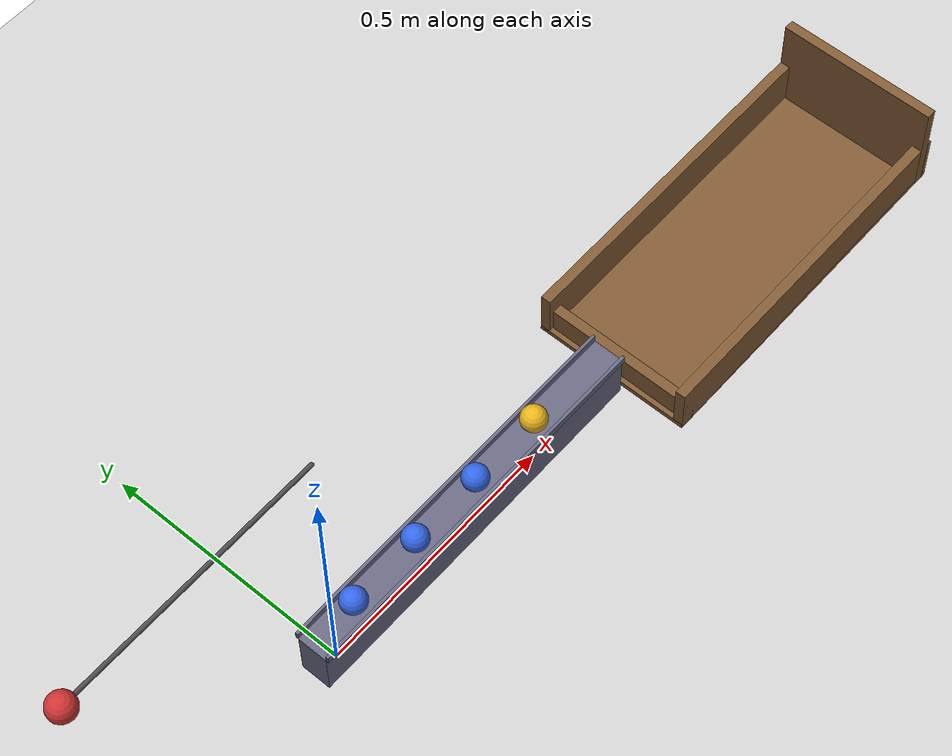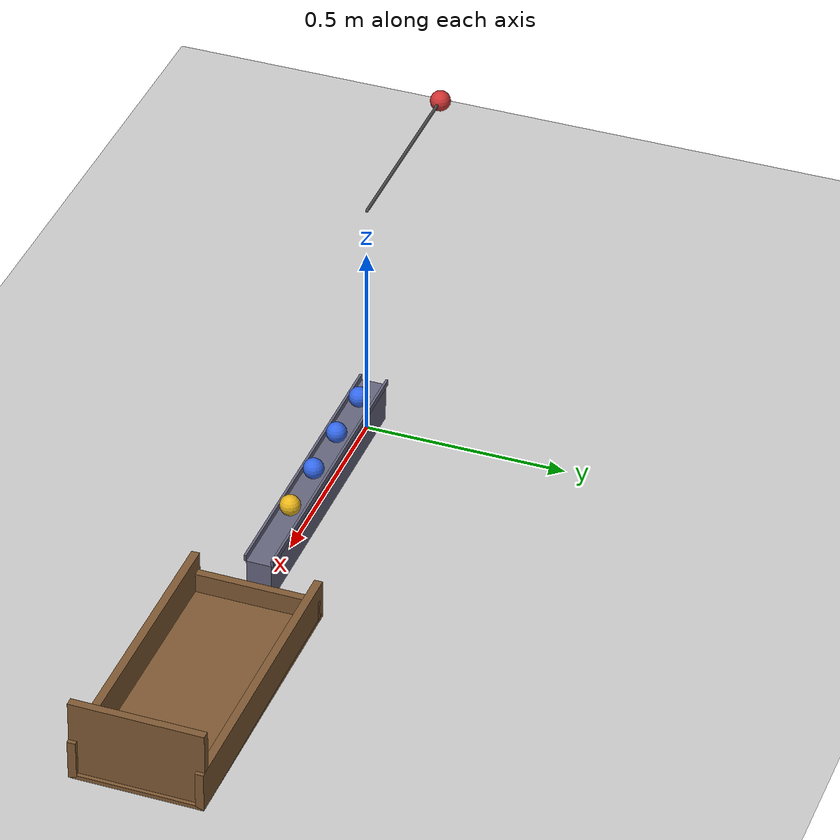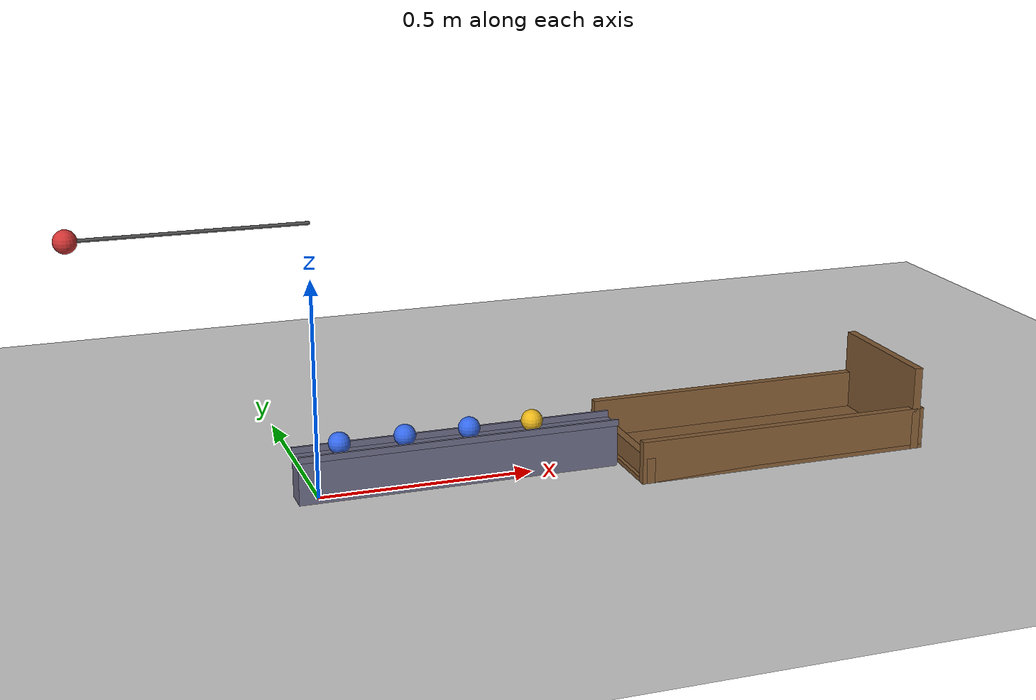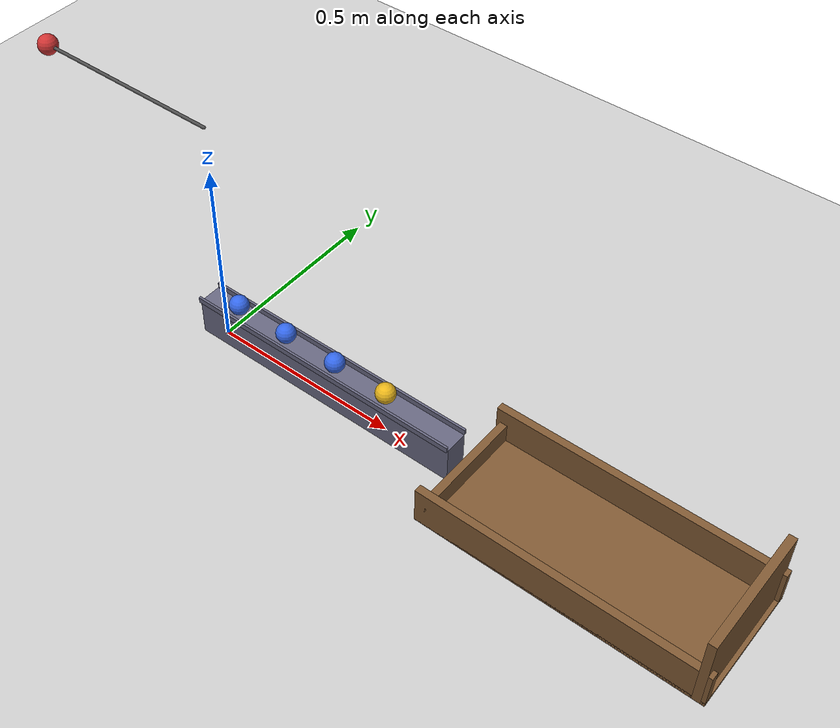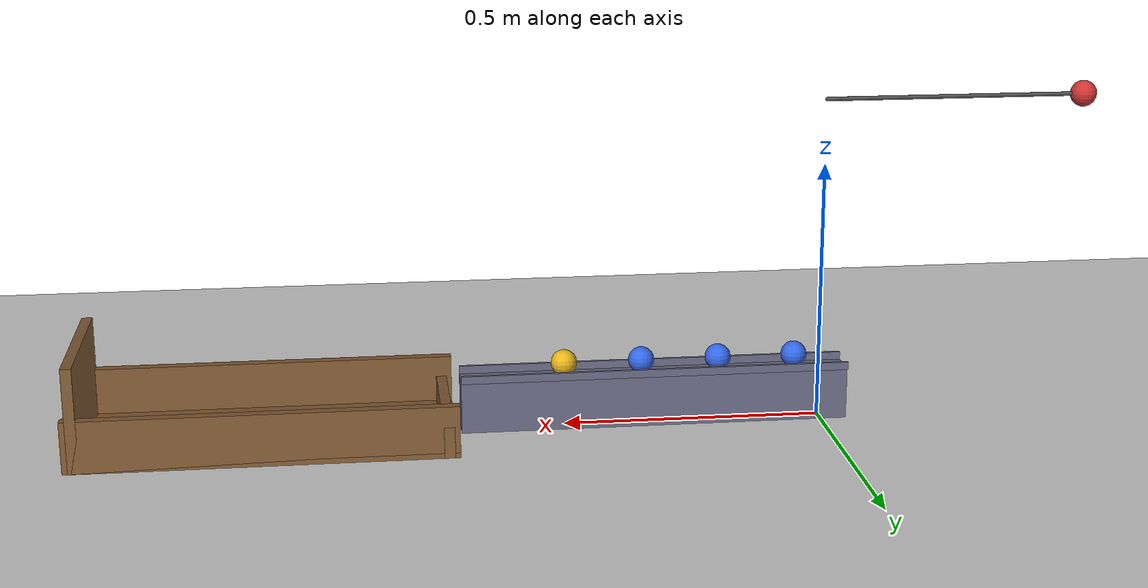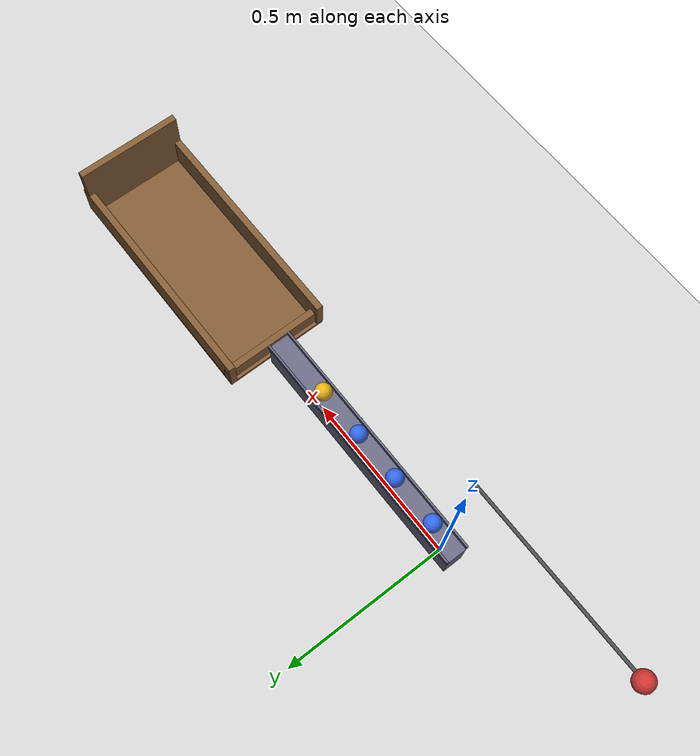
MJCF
<mujoco model="pendulum_ball_chain">
  <option timestep="0.002"/>
  <worldbody>
    <light name="main_light" pos="0.5 -1 2" dir="0 0.5 -1"/>
    <geom name="floor" type="plane" size="3 3 0.1" rgba="0.8 0.8 0.8 1"/>

    <body name="pendulum" pos="0 0 0.625">
      <joint name="pendulum_hinge" type="hinge" axis="0 1 0"/>
      <geom name="pendulum_rod" type="capsule" fromto="0 0 0 -0.5 0 0" size="0.004" mass="0.001" contype="0" conaffinity="0" rgba="0.3 0.3 0.3 1"/>
      <geom name="pendulum_bob" type="sphere" pos="-0.5 0 0" size="0.025" mass="0.1" rgba="0.8 0.2 0.2 1"/>
    </body>

    <body name="rail" pos="0.325 0 0">
      <geom name="rail_base" type="box" size="0.375 0.03 0.05" pos="0 0 0.05" condim="6" friction="0.05 0.005 0.003" rgba="0.4 0.4 0.5 1"/>
      <geom name="rail_guide_left" type="box" size="0.375 0.003 0.0075" pos="0 0.033 0.1075" condim="6" friction="0.05 0.005 0.003" rgba="0.4 0.4 0.5 1"/>
      <geom name="rail_guide_right" type="box" size="0.375 0.003 0.0075" pos="0 -0.033 0.1075" condim="6" friction="0.05 0.005 0.003" rgba="0.4 0.4 0.5 1"/>
    </body>

    <body name="ball1" pos="0.0505 0 0.125">
      <freejoint name="ball1_free"/>
      <geom name="ball1_geom" type="sphere" size="0.025" mass="0.1" friction="0.05 0.005 0.003" rgba="0.2 0.4 0.9 1"/>
    </body>
    <body name="ball2" pos="0.2005 0 0.125">
      <freejoint name="ball2_free"/>
      <geom name="ball2_geom" type="sphere" size="0.025" mass="0.1" friction="0.05 0.005 0.003" rgba="0.2 0.4 0.9 1"/>
    </body>
    <body name="ball3" pos="0.3505 0 0.125">
      <freejoint name="ball3_free"/>
      <geom name="ball3_geom" type="sphere" size="0.025" mass="0.1" friction="0.05 0.005 0.003" rgba="0.2 0.4 0.9 1"/>
    </body>
    <body name="ball4" pos="0.5005 0 0.125">
      <freejoint name="ball4_free"/>
      <geom name="ball4_geom" type="sphere" size="0.025" mass="0.1" friction="0.05 0.005 0.003" rgba="0.9 0.7 0.1 1"/>
    </body>

    <body name="box" pos="1.07 0 0">
      <geom name="box_floor" type="box" size="0.36 0.16 0.005" pos="0 0 0.005" condim="6" friction="1 0.02 0.03" rgba="0.5 0.35 0.2 1"/>
      <geom name="box_front" type="box" size="0.01 0.16 0.03" pos="-0.34 0 0.03" condim="6" friction="1 0.02 0.03" rgba="0.5 0.35 0.2 1"/>
      <geom name="box_back" type="box" size="0.01 0.16 0.1" pos="0.34 0 0.1" condim="6" friction="1 0.02 0.03" rgba="0.5 0.35 0.2 1"/>
      <geom name="box_left" type="box" size="0.36 0.01 0.05" pos="0 0.15 0.05" condim="6" friction="1 0.02 0.03" rgba="0.5 0.35 0.2 1"/>
      <geom name="box_right" type="box" size="0.36 0.01 0.05" pos="0 -0.15 0.05" condim="6" friction="1 0.02 0.03" rgba="0.5 0.35 0.2 1"/>
    </body>
  </worldbody>

  <contact>
    <exclude name="ex_pend_rail" body1="pendulum" body2="rail"/>
    <exclude name="ex_pend_b1" body1="pendulum" body2="ball1"/>
    <exclude name="ex_b1_b2" body1="ball1" body2="ball2"/>
    <exclude name="ex_b2_b3" body1="ball2" body2="ball3"/>
    <exclude name="ex_b3_b4" body1="ball3" body2="ball4"/>
    <pair name="pair_pend_b1" geom1="pendulum_bob" geom2="ball1_geom" condim="1" solref="-60000 -8" solimp="0.95 0.95 0.001"/>
    <pair name="pair_b1_b2" geom1="ball1_geom" geom2="ball2_geom" condim="1" solref="-60000 -8" solimp="0.95 0.95 0.001"/>
    <pair name="pair_b2_b3" geom1="ball2_geom" geom2="ball3_geom" condim="1" solref="-60000 -8" solimp="0.95 0.95 0.001"/>
    <pair name="pair_b3_b4" geom1="ball3_geom" geom2="ball4_geom" condim="1" solref="-60000 -8" solimp="0.95 0.95 0.001"/>
  </contact>
</mujoco>
